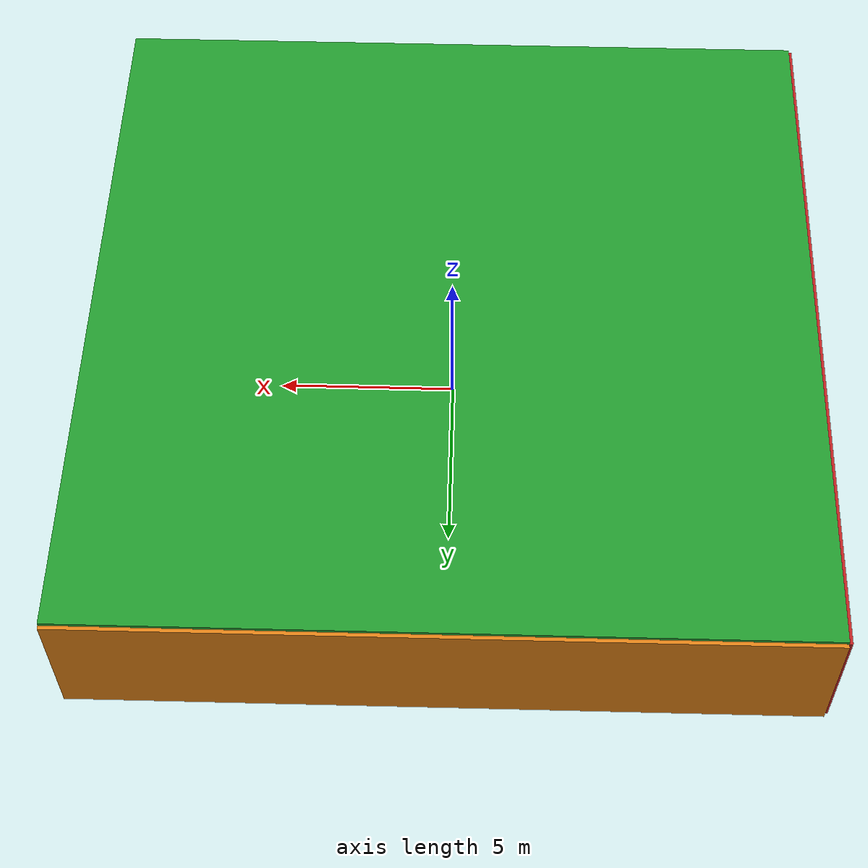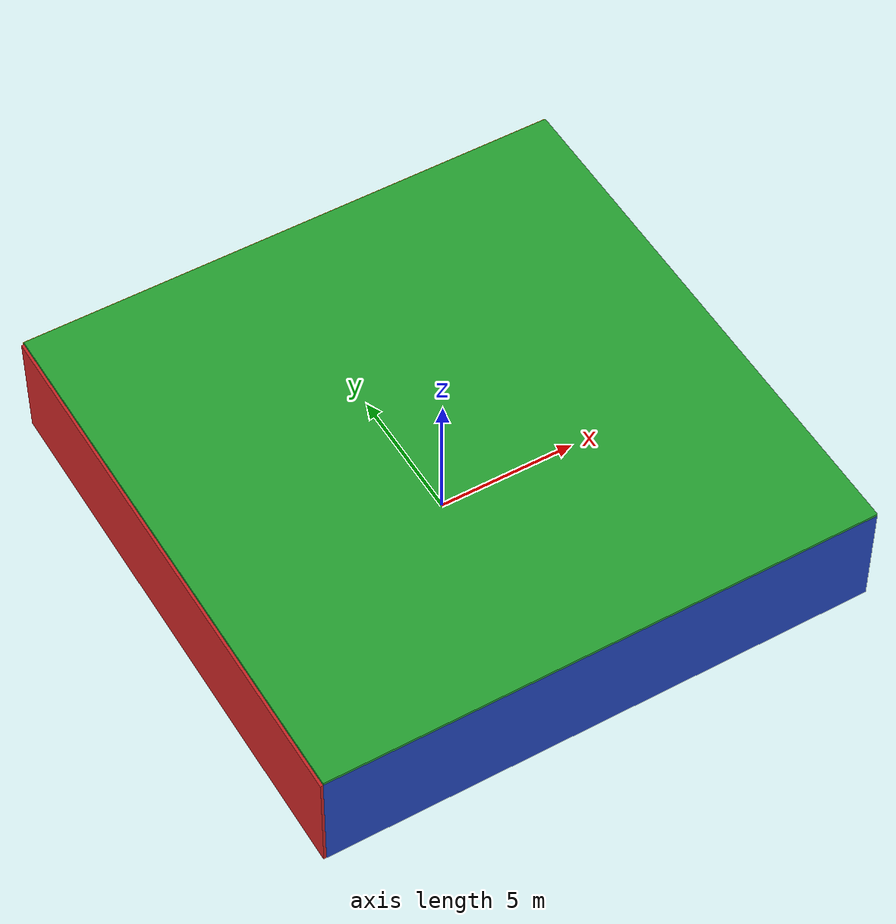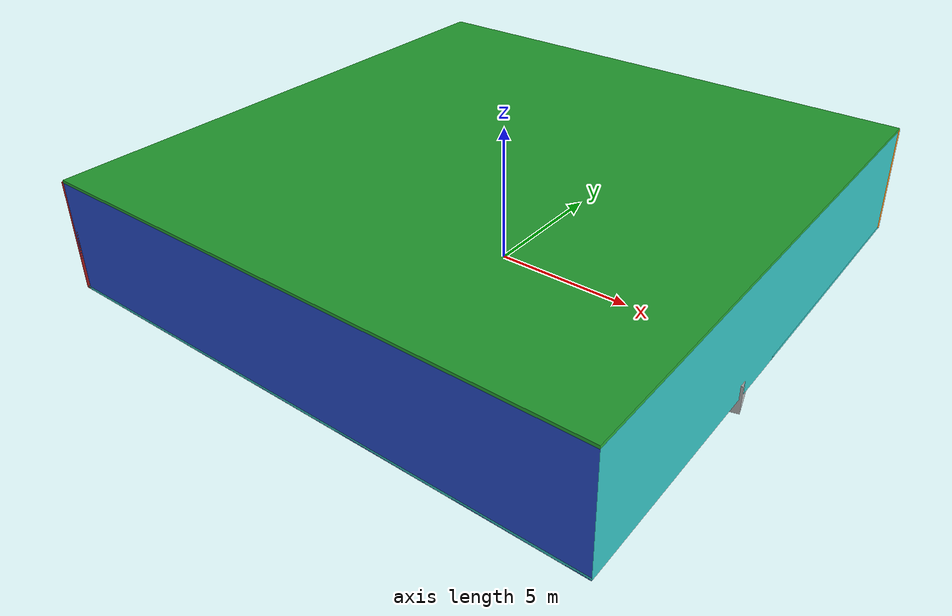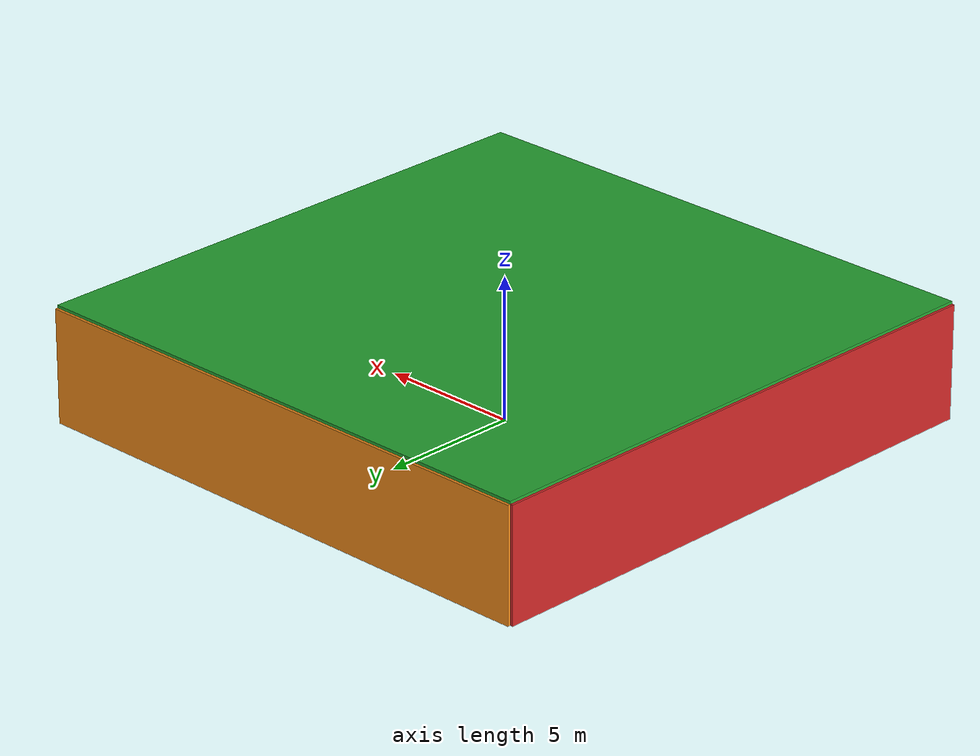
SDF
<sdf version="1.4">
 <world name="default">
  <physics type="ode">
   <max_step_size>0.001</max_step_size>
   <real_time_factor>1</real_time_factor>
   <real_time_update_rate>1000</real_time_update_rate>
   <gravity>0 0 -9.8</gravity>
  </physics>
  <scene><ambient>0.4 0.4 0.4 1</ambient><background>0.7 0.7 0.7 1</background><shadows>1</shadows></scene>
  <model name="Surrounding">
   <static>1</static>
   <link name="Ceiling">
    <collision name="Ceiling_Collision"><geometry><box><size>20 20 0.1</size></box></geometry></collision>
    <visual name="Ceiling_Visual">
     <geometry><box><size>20 20 0.1</size></box></geometry>
     <material>
      <script><uri>file://media/materials/scripts/gazebo.material</uri><name>Gazebo/GreenGlow</name></script>
     </material>
    </visual>
    <pose>0 0 4.05 0 0 0</pose>
   </link>
   <link name="Wall_South">
    <collision name="Wall_South_Collision">
     <geometry><box><size>20 0 4</size></box></geometry>
     <pose>0 0 2 0 -0 0</pose>
    </collision>
    <visual name="Wall_South_Visual">
     <pose>0 0 2 0 -0 0</pose>
     <geometry><box><size>20 0 4</size></box></geometry>
     <material>
      <script><uri>file://media/materials/scripts/gazebo.material</uri><name>Gazebo/BlueGlow</name></script>
     </material>
    </visual>
    <velocity_decay><linear>0</linear><angular>0</angular></velocity_decay>
    <pose>0 -10 0 0 -0 0</pose>
   </link>
   <link name="Wall_East">
    <collision name="Wall_21_Collision">
     <geometry><box><size>20 0 4</size></box></geometry>
     <pose>0 0 2 0 -0 0</pose>
    </collision>
    <visual name="Wall_21_Visual">
     <pose>0 0 2 0 -0 0</pose>
     <geometry><box><size>20 0 4</size></box></geometry>
     <material>
      <script><uri>file://media/materials/scripts/gazebo.material</uri><name>Gazebo/Turquoise</name></script>
     </material>
    </visual>
    <velocity_decay><linear>0</linear><angular>0</angular></velocity_decay>
    <pose>10 0 0 0 -0 1.5708</pose>
   </link>
   <link name="Wall_North">
    <collision name="Wall_22_Collision">
     <geometry><box><size>20 0.2 4</size></box></geometry>
     <pose>0 0 2 0 -0 0</pose>
    </collision>
    <visual name="Wall_22_Visual">
     <pose>0 0 2 0 -0 0</pose>
     <geometry><box><size>20 0.2 4</size></box></geometry>
     <material>
      <script><uri>file://media/materials/scripts/gazebo.material</uri><name>Gazebo/Orange</name></script>
     </material>
    </visual>
    <velocity_decay><linear>0</linear><angular>0</angular></velocity_decay>
    <pose>0 10 0 0 -0 0</pose>
   </link>
   <link name="Wall_West">
    <collision name="Wall_23_Collision">
     <geometry><box><size>20 0.2 4</size></box></geometry>
     <pose>0 0 2 0 -0 0</pose>
    </collision>
    <visual name="Wall_23_Visual">
     <pose>0 0 2 0 -0 0</pose>
     <geometry><box><size>20 0.2 4</size></box></geometry>
     <material>
      <script><uri>file://media/materials/scripts/gazebo.material</uri><name>Gazebo/Red</name></script>
     </material>
    </visual>
    <velocity_decay><linear>0</linear><angular>0</angular></velocity_decay>
    <pose>-10 0 0 0 0 -1.5708</pose>
   </link>
   <link name="Ground_link">
    <collision name="collision">
     <pose>0 0 .05 0 -0 0</pose>
     <geometry><box><size>20 20 0.1</size></box></geometry>
    </collision>
    <visual name="visual">
     <pose>0 0 .05 0 -0 0</pose>
     <geometry><box><size>20 20 0.1</size></box></geometry>
     <material>
      <script>
       <uri>file://media/materials/scripts/gazebo.material</uri>
       <name>Gazebo/TurquoiseGlowOutline</name>
      </script>
     </material>
    </visual>
   </link>
   <static>1</static>
  </model>
  <spherical_coordinates>
   <surface_model>EARTH_WGS84</surface_model>
   <latitude_deg>0</latitude_deg>
   <longitude_deg>0</longitude_deg>
   <elevation>0</elevation>
   <heading_deg>0</heading_deg>
  </spherical_coordinates>
  <light name="lightball_0" type="diffuse">
   <diffuse>0.8 0.8 0.8 1</diffuse>
   <specular>0.2 0.2 0.2 1</specular>
   <attenuation>
    <range>100</range>
    <constant>0.7</constant>
    <linear>0.01</linear>
    <quadratic>0.001</quadratic>
   </attenuation>
   <direction>-0.5 0.1 -0.9</direction>
   <pose>1.20198082999 9.18840758213 2.12479950527 0 0 0</pose>
  </light>
  <light name="lightball_1" type="diffuse">
   <diffuse>0.8 0.8 0.8 1</diffuse>
   <specular>0.2 0.2 0.2 1</specular>
   <attenuation>
    <range>100</range>
    <constant>0.7</constant>
    <linear>0.01</linear>
    <quadratic>0.001</quadratic>
   </attenuation>
   <direction>-0.5 0.1 -0.9</direction>
   <pose>1.64319171214 -5.1433804821 2.59812905349 0 0 0</pose>
  </light>
  <light name="lightball_2" type="diffuse">
   <diffuse>0.8 0.8 0.8 1</diffuse>
   <specular>0.2 0.2 0.2 1</specular>
   <attenuation>
    <range>100</range>
    <constant>0.7</constant>
    <linear>0.01</linear>
    <quadratic>0.001</quadratic>
   </attenuation>
   <direction>-0.5 0.1 -0.9</direction>
   <pose>9.87732171398 3.90193836536 0.658092362624 0 0 0</pose>
  </light>
  <light name="lightball_3" type="diffuse">
   <diffuse>0.8 0.8 0.8 1</diffuse>
   <specular>0.2 0.2 0.2 1</specular>
   <attenuation>
    <range>100</range>
    <constant>0.7</constant>
    <linear>0.01</linear>
    <quadratic>0.001</quadratic>
   </attenuation>
   <direction>-0.5 0.1 -0.9</direction>
   <pose>-5.94585125857 3.4352637619 1.93297862838 0 0 0</pose>
  </light>
  <light name="lightball_4" type="diffuse">
   <diffuse>0.8 0.8 0.8 1</diffuse>
   <specular>0.2 0.2 0.2 1</specular>
   <attenuation>
    <range>100</range>
    <constant>0.7</constant>
    <linear>0.01</linear>
    <quadratic>0.001</quadratic>
   </attenuation>
   <direction>-0.5 0.1 -0.9</direction>
   <pose>3.43155713206 -1.43597764839 0.857748604464 0 0 0</pose>
  </light>
  <include>
   <uri>model://textured_shapes</uri>
   <pose>-7.87750458252 0.880355446094 0 0 0 2.81066263976</pose>
  </include>
  <include>
   <uri>model://construction_cone</uri>
   <pose>-4.92309527486 -7.97679434525 0 0 0 0.473005307837</pose>
  </include>
  <include><uri>model://cabinet</uri><pose>-4.98642093664 -1.67853748078 0 0 0 2.65460605803</pose></include>
  <include><uri>model://cabinet</uri><pose>-4.52924975 8.27377776171 0 0 0 1.05072345757</pose></include>
  <include><uri>model://table</uri><pose>-1.97084206303 5.05759741622 0 0 0 3.0092184855</pose></include>
  <include><uri>model://cabinet</uri><pose>1.32936848998 1.7395893901 0 0 0 2.38381432821</pose></include>
  <include>
   <uri>model://textured_shapes</uri>
   <pose>7.54158741608 -5.27247229609 0 0 0 0.988229112132</pose>
  </include>
  <include>
   <uri>model://textured_shapes</uri>
   <pose>8.01461211776 -2.16684274964 0 0 0 1.825884789</pose>
  </include>
  <include>
   <uri>model://construction_cone</uri>
   <pose>7.86579703976 4.1658548026 0 0 0 0.853303409275</pose>
  </include>
 </world>
</sdf>

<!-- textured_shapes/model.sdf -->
<sdf version="1.6">
  <model name="textured_shapes">
    <pose>0 0 0.5 0 0 0</pose>
    <link name="box">
      <pose>0 -1.5 0 0 0 0</pose>
      <collision name="collision">
        <geometry>
          <box>
            <size>1 1 1</size>
          </box>
        </geometry>
      </collision>
      <visual name="visual">
        <geometry>
          <box>
            <size>1 1 1</size>
          </box>
        </geometry>
        <material>
          <script>
            <uri>model://../model_source/models/textured_shapes/materials/scripts</uri>
            <uri>model://../model_source/models/textured_shapes/materials/textures</uri>
            <name>TexturedShape/Squares</name>
          </script>
        </material>
      </visual>
    </link>
    <link name="sphere">
      <collision name="collision">
        <geometry>
          <sphere>
            <radius>0.5</radius>
          </sphere>
        </geometry>
      </collision>
      <visual name="visual">
        <geometry>
          <sphere>
            <radius>0.5</radius>
          </sphere>
        </geometry>
        <material>
          <script>
            <uri>model://../model_source/models/textured_shapes/materials/scripts</uri>
            <uri>model://../model_source/models/textured_shapes/materials/textures</uri>
            <name>TexturedShape/Squares</name>
          </script>
        </material>
      </visual>
    </link>
    <link name="cylinder">
      <pose>0 1.5 0 0 0 0</pose>
      <collision name="collision">
        <geometry>
          <cylinder>
            <radius>0.5</radius>
            <length>1</length>
          </cylinder>
        </geometry>
      </collision>
      <visual name="visual">
        <geometry>
          <cylinder>
            <radius>0.5</radius>
            <length>1</length>
          </cylinder>
        </geometry>
        <material>
          <script>
            <uri>model://../model_source/models/textured_shapes/materials/scripts</uri>
            <uri>model://../model_source/models/textured_shapes/materials/textures</uri>
            <name>TexturedShape/Squares</name>
          </script>
        </material>
      </visual>
    </link>
  </model>
</sdf>

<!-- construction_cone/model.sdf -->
<sdf version="1.5">
  <model name="Construction Cone">
    <link name="link">
      <collision name="collision">
        <geometry>
          <mesh>
            <scale>10 10 10</scale>
            <uri>file://isr-testbed/construction_cone/meshes/construction_cone.dae</uri>
          </mesh>
        </geometry>
      </collision>
      <visual name="visual">
        <geometry>
          <mesh>
            <scale>10 10 10</scale>
            <uri>file://isr-testbed/construction_cone/meshes/construction_cone.dae</uri>
          </mesh>
        </geometry>
      </visual>
    </link>
  </model>
</sdf>

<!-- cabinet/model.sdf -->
<sdf version="1.5">
  <model name="cabinet">
    <static>true</static>
    <link name="cabinet_bottom_plate">
      <inertial>
        <pose>0 0 -1 0 0 0</pose>
        <inertia>
          <ixx>2.050000</ixx>
          <ixy>0</ixy>
          <ixz>0</ixz>
          <iyy>2.050000</iyy>
          <iyz>0</iyz>
          <izz>2.050000</izz>
        </inertia>
        <mass>25.000000</mass>
      </inertial>
      <collision name="cabinet_bottom_plate_geom">
        <pose>0 0 0.010000 0 0 0</pose>
        <geometry>
          <box>
            <size>0.450000 0.450000 0.020000</size>
          </box>
        </geometry>
      </collision>
      <visual name="cabinet_bottom_plate_geom_visual">
        <pose>0 0 0.010000 0 0 0</pose>
        <geometry>
          <box>
            <size>0.450000 0.450000 0.020000</size>
          </box>
        </geometry>
        <material>
          <script>
            <uri>model://media/materials/scripts/gazebo.material</uri>
            <name>Gazebo/Wood</name>
          </script>
        </material>
      </visual>
      <collision name="cabinet_bottom_plate_geom_cabinet_back_plate">
        <pose>0.235000 0 0.510000 0 0 0</pose>
        <geometry>
          <box>
            <size>0.020000 0.450000 1.020000</size>
          </box>
        </geometry>
      </collision>
      <visual name="cabinet_bottom_plate_geom_cabinet_back_plate_visual">
        <pose>0.235000 0 0.510000 0 0 0</pose>
        <geometry>
          <box>
            <size>0.020000 0.450000 1.020000</size>
          </box>
        </geometry>
        <material>
          <script>
            <uri>model://media/materials/scripts/gazebo.material</uri>
            <name>Gazebo/Wood</name>
          </script>
        </material>
      </visual>
      <collision name="cabinet_bottom_plate_geom_cabinet_left_plate">
        <pose>0 0.235000 0.510000 0 0 0</pose>
        <geometry>
          <box>
            <size>0.450000 0.020000 1.020000</size>
          </box>
        </geometry>
      </collision>
      <visual name="cabinet_bottom_plate_geom_cabinet_left_plate_visual">
        <pose>0 0.235000 0.510000 0 0 0</pose>
        <geometry>
          <box>
            <size>0.450000 0.020000 1.020000</size>
          </box>
        </geometry>
        <material>
          <script>
            <uri>model://media/materials/scripts/gazebo.material</uri>
            <name>Gazebo/Wood</name>
          </script>
        </material>
      </visual>
      <collision name="cabinet_bottom_plate_geom_cabinet_middle_plate">
        <pose>0 0 0.510000 0 0 0</pose>
        <geometry>
          <box>
            <size>0.450000 0.450000 0.020000</size>
          </box>
        </geometry>
      </collision>
      <visual name="cabinet_bottom_plate_geom_cabinet_middle_plate_visual">
        <pose>0 0 0.510000 0 0 0</pose>
        <geometry>
          <box>
            <size>0.450000 0.450000 0.020000</size>
          </box>
        </geometry>
        <material>
          <script>
            <uri>model://media/materials/scripts/gazebo.material</uri>
            <name>Gazebo/Wood</name>
          </script>
        </material>
      </visual>
      <collision name="cabinet_bottom_plate_geom_cabinet_right_plate">
        <pose>0 -0.235000 0.510000 0 0 0</pose>
        <geometry>
          <box>
            <size>0.450000 0.020000 1.020000</size>
          </box>
        </geometry>
      </collision>
      <visual name="cabinet_bottom_plate_geom_cabinet_right_plate_visual">
        <pose>0 -0.235000 0.510000 0 0 0</pose>
        <geometry>
          <box>
            <size>0.450000 0.020000 1.020000</size>
          </box>
        </geometry>
        <material>
          <script>
            <uri>model://media/materials/scripts/gazebo.material</uri>
            <name>Gazebo/Wood</name>
          </script>
        </material>
      </visual>
      <collision name="cabinet_bottom_plate_geom_cabinet_top_plate">
        <pose>0 0 1.010000 0 0 0</pose>
        <geometry>
          <box>
            <size>0.450000 0.450000 0.020000</size>
          </box>
        </geometry>
      </collision>
      <visual name="cabinet_bottom_plate_geom_cabinet_top_plate_visual">
        <pose>0 0 1.010000 0 0 0</pose>
        <geometry>
          <box>
            <size>0.450000 0.450000 0.020000</size>
          </box>
        </geometry>
        <material>
          <script>
            <uri>model://media/materials/scripts/gazebo.material</uri>
            <name>Gazebo/Wood</name>
          </script>
        </material>
      </visual>
    </link>
  </model>
</sdf>

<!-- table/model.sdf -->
<sdf version="1.5">
  <model name="table">
    <static>true</static>
    <link name="link">
      <collision name="surface">
        <pose>0 0 1.0 0 0 0</pose>
        <geometry>
          <box>
            <size>1.5 0.8 0.03</size>
          </box>
        </geometry>
        <surface>
          <friction>
            <ode>
              <mu>0.6</mu>
              <mu2>0.6</mu2>
            </ode>
          </friction>
        </surface>
      </collision>
      <visual name="visual1">
        <pose>0 0 1.0 0 0 0</pose>
        <geometry>
          <box>
            <size>1.5 0.8 0.03</size>
          </box>
        </geometry>
        <material>
          <script>
            <uri>model://media/materials/scripts/gazebo.material</uri>
            <name>Gazebo/Wood</name>
          </script>
        </material>
      </visual>
      <collision name="front_left_leg">
        <pose>0.68 0.38 0.5 0 0 0</pose>
        <geometry>
          <cylinder>
            <radius>0.02</radius>
            <length>1.0</length>
          </cylinder>
        </geometry>
      </collision>
      <visual name="front_left_leg">
        <pose>0.68 0.38 0.5 0 0 0</pose>
        <geometry>
          <cylinder>
            <radius>0.02</radius>
            <length>1.0</length>
          </cylinder>
        </geometry>
        <material>
          <script>
            <uri>model://media/materials/scripts/gazebo.material</uri>
            <name>Gazebo/Grey</name>
          </script>
        </material>
      </visual>
      <collision name="front_right_leg">
        <pose>0.68 -0.38 0.5 0 0 0</pose>
        <geometry>
          <cylinder>
            <radius>0.02</radius>
            <length>1.0</length>
          </cylinder>
        </geometry>
      </collision>
      <visual name="front_right_leg">
        <pose>0.68 -0.38 0.5 0 0 0</pose>
        <geometry>
          <cylinder>
            <radius>0.02</radius>
            <length>1.0</length>
          </cylinder>
        </geometry>
        <material>
          <script>
            <uri>model://media/materials/scripts/gazebo.material</uri>
            <name>Gazebo/Grey</name>
          </script>
        </material>
      </visual>
      <collision name="back_right_leg">
        <pose>-0.68 -0.38 0.5 0 0 0</pose>
        <geometry>
          <cylinder>
            <radius>0.02</radius>
            <length>1.0</length>
          </cylinder>
        </geometry>
      </collision>
      <visual name="back_right_leg">
        <pose>-0.68 -0.38 0.5 0 0 0</pose>
        <geometry>
          <cylinder>
            <radius>0.02</radius>
            <length>1.0</length>
          </cylinder>
        </geometry>
        <material>
          <script>
            <uri>model://media/materials/scripts/gazebo.material</uri>
            <name>Gazebo/Grey</name>
          </script>
        </material>
      </visual>
      <collision name="back_left_leg">
        <pose>-0.68 0.38 0.5 0 0 0</pose>
        <geometry>
          <cylinder>
            <radius>0.02</radius>
            <length>1.0</length>
          </cylinder>
        </geometry>
      </collision>
      <visual name="back_left_leg">
        <pose>-0.68 0.38 0.5 0 0 0</pose>
        <geometry>
          <cylinder>
            <radius>0.02</radius>
            <length>1.0</length>
          </cylinder>
        </geometry>
        <material>
          <script>
            <uri>model://media/materials/scripts/gazebo.material</uri>
            <name>Gazebo/Grey</name>
          </script>
        </material>
      </visual>
    </link>
  </model>
</sdf>
